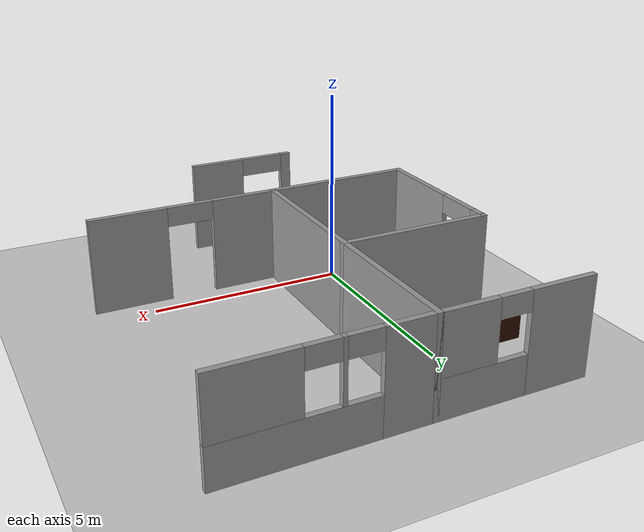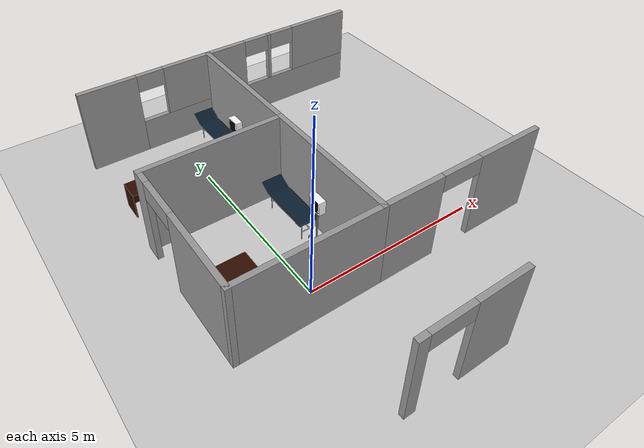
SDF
<sdf version="1.6">
 <world name="default">
  <model name="ground_plane">
   <static>1</static>
   <link name="link">
    <collision name="collision">
     <geometry><plane><normal>0 0 1</normal><size>100 100</size></plane></geometry>
     <surface><friction><ode><mu>100</mu><mu2>50</mu2></ode></friction></surface>
    </collision>
    <visual name="visual">
     <cast_shadows>0</cast_shadows>
     <geometry><plane><normal>0 0 1</normal><size>100 100</size></plane></geometry>
     <material>
      <script><uri>file://media/materials/scripts/gazebo.material</uri><name>Gazebo/Grey</name></script>
     </material>
    </visual>
   </link>
  </model>
  <model name="three_drawer_desk">
   <static>1</static>
   <link name="three_drawer_desk">
    <collision name="three_drawer_desk">
     <geometry><mesh><uri>model://three_drawer_desk/meshes/model.dae</uri></mesh></geometry>
    </collision>
    <visual name="three_drawer_desk_mesh">
     <geometry><mesh><uri>model://three_drawer_desk/meshes/model.dae</uri></mesh></geometry>
    </visual>
   </link>
   <pose>-1.618 4.9115 0 0 -0 3.14159</pose>
  </model>
  <model name="three_drawer_desk_clone">
   <static>1</static>
   <link name="three_drawer_desk">
    <collision name="three_drawer_desk">
     <geometry><mesh><uri>model://three_drawer_desk/meshes/model.dae</uri></mesh></geometry>
    </collision>
    <visual name="three_drawer_desk_mesh">
     <geometry><mesh><uri>model://three_drawer_desk/meshes/model.dae</uri></mesh></geometry>
    </visual>
   </link>
   <pose>-1.62836 1.05851 0 0 -0 3.14159</pose>
  </model>
  <model name="medical_couch">
   <static>1</static>
   <link name="medical_couch">
    <collision name="medical_couch">
     <geometry><mesh><uri>model://medical_couch/meshes/model.dae</uri></mesh></geometry>
    </collision>
    <visual name="medical_couch_mesh">
     <geometry><mesh><uri>model://medical_couch/meshes/model.dae</uri></mesh></geometry>
    </visual>
   </link>
   <pose>1.03141 6.05659 0 0 -0 3.14159</pose>
  </model>
  <model name="medical_couch_clone">
   <static>1</static>
   <link name="medical_couch">
    <collision name="medical_couch">
     <geometry><mesh><uri>model://medical_couch/meshes/model.dae</uri></mesh></geometry>
    </collision>
    <visual name="medical_couch_mesh">
     <geometry><mesh><uri>model://medical_couch/meshes/model.dae</uri></mesh></geometry>
    </visual>
   </link>
   <pose>1.03641 2.21268 0 0 -0 3.14159</pose>
  </model>
  <model name="vitals_monitor_clone_2_clone_3_clone">
   <static>1</static>
   <link name="vitals_monitor">
    <collision name="vitals_monitor">
     <geometry><mesh><uri>model://vitals_monitor/meshes/model.dae</uri></mesh></geometry>
    </collision>
    <visual name="vitals_monitor_mesh">
     <geometry><mesh><uri>model://vitals_monitor/meshes/model.dae</uri></mesh></geometry>
    </visual>
   </link>
   <pose>0.995211 4.99575 0 0 0 -1.5708</pose>
  </model>
  <model name="vitals_monitor_clone_2_clone_3_clone_0">
   <static>1</static>
   <link name="vitals_monitor">
    <collision name="vitals_monitor">
     <geometry><mesh><uri>model://vitals_monitor/meshes/model.dae</uri></mesh></geometry>
    </collision>
    <visual name="vitals_monitor_mesh">
     <geometry><mesh><uri>model://vitals_monitor/meshes/model.dae</uri></mesh></geometry>
    </visual>
   </link>
   <pose>0.989105 1.14447 0 0 0 -1.5708</pose>
  </model>
  <model name="hospital_v1">
   <link name="Wall_10">
    <pose>1.425 5.35 0 0 0 -1.5708</pose>
    <visual name="Wall_10_Visual">
     <pose>0 0 1.25 0 -0 0</pose>
     <geometry><box><size>4 0.15 2.5</size></box></geometry>
     <material>
      <script><uri>file://media/materials/scripts/gazebo.material</uri><name>Gazebo/Grey</name></script>
      <ambient>1 1 1 1</ambient>
     </material>
     <meta><layer>0</layer></meta>
    </visual>
    <collision name="Wall_10_Collision">
     <pose>0 0 1.25 0 -0 0</pose>
     <geometry><box><size>4 0.15 2.5</size></box></geometry>
     <surface>
      <friction>
       <ode><mu>1</mu><mu2>1</mu2><fdir1>0 0 0</fdir1><slip1>0</slip1><slip2>0</slip2></ode>
       <torsional>
        <coefficient>1</coefficient>
        <patch_radius>0</patch_radius>
        <surface_radius>0</surface_radius>
        <use_patch_radius>1</use_patch_radius>
        <ode><slip>0</slip></ode>
       </torsional>
      </friction>
      <bounce><restitution_coefficient>0</restitution_coefficient><threshold>1e+06</threshold></bounce>
      <contact>
       <collide_without_contact>0</collide_without_contact>
       <collide_without_contact_bitmask>1</collide_without_contact_bitmask>
       <collide_bitmask>1</collide_bitmask>
       <ode>
        <soft_cfm>0</soft_cfm>
        <soft_erp>0.2</soft_erp>
        <kp>1e+13</kp>
        <kd>1</kd>
        <max_vel>0.01</max_vel>
        <min_depth>0</min_depth>
       </ode>
       <bullet>
        <split_impulse>1</split_impulse>
        <split_impulse_penetration_threshold>-0.01</split_impulse_penetration_threshold>
        <soft_cfm>0</soft_cfm>
        <soft_erp>0.2</soft_erp>
        <kp>1e+13</kp>
        <kd>1</kd>
       </bullet>
      </contact>
     </surface>
    </collision>
   </link>
   <link name="Wall_11">
    <pose>-0.5 3.425 0 0 -0 3.14159</pose>
    <visual name="Wall_11_Visual">
     <pose>0 0 1.25 0 -0 0</pose>
     <geometry><box><size>4 0.15 2.5</size></box></geometry>
     <material>
      <script><uri>file://media/materials/scripts/gazebo.material</uri><name>Gazebo/Grey</name></script>
      <ambient>1 1 1 1</ambient>
     </material>
     <meta><layer>0</layer></meta>
    </visual>
    <collision name="Wall_11_Collision">
     <pose>0 0 1.25 0 -0 0</pose>
     <geometry><box><size>4 0.15 2.5</size></box></geometry>
     <surface>
      <friction>
       <ode><mu>1</mu><mu2>1</mu2><fdir1>0 0 0</fdir1><slip1>0</slip1><slip2>0</slip2></ode>
       <torsional>
        <coefficient>1</coefficient>
        <patch_radius>0</patch_radius>
        <surface_radius>0</surface_radius>
        <use_patch_radius>1</use_patch_radius>
        <ode><slip>0</slip></ode>
       </torsional>
      </friction>
      <bounce><restitution_coefficient>0</restitution_coefficient><threshold>1e+06</threshold></bounce>
      <contact>
       <collide_without_contact>0</collide_without_contact>
       <collide_without_contact_bitmask>1</collide_without_contact_bitmask>
       <collide_bitmask>1</collide_bitmask>
       <ode>
        <soft_cfm>0</soft_cfm>
        <soft_erp>0.2</soft_erp>
        <kp>1e+13</kp>
        <kd>1</kd>
        <max_vel>0.01</max_vel>
        <min_depth>0</min_depth>
       </ode>
       <bullet>
        <split_impulse>1</split_impulse>
        <split_impulse_penetration_threshold>-0.01</split_impulse_penetration_threshold>
        <soft_cfm>0</soft_cfm>
        <soft_erp>0.2</soft_erp>
        <kp>1e+13</kp>
        <kd>1</kd>
       </bullet>
      </contact>
     </surface>
    </collision>
   </link>
   <link name="Wall_15">
    <pose>3.85 7.275 0 0 -0 0</pose>
    <inertial>
     <mass>1</mass>
     <inertia><ixx>1</ixx><ixy>0</ixy><ixz>0</ixz><iyy>1</iyy><iyz>0</iyz><izz>1</izz></inertia>
    </inertial>
    <visual name="Wall_15_Visual_2">
     <pose>-0.35 0 1.75 0 -0 0</pose>
     <geometry><box><size>0.1 0.15 1.5</size></box></geometry>
     <material>
      <script><uri>file://media/materials/scripts/gazebo.material</uri><name>Gazebo/Grey</name></script>
      <ambient>1 1 1 1</ambient>
      <shader type="vertex"><normal_map>__default__</normal_map></shader>
      <diffuse>0.7 0.7 0.7 1</diffuse>
      <specular>0.01 0.01 0.01 1</specular>
      <emissive>0 0 0 1</emissive>
     </material>
     <meta><layer>0</layer></meta>
    </visual>
    <visual name="Wall_15_Visual_3">
     <pose>1.5 0 1.75 0 -0 0</pose>
     <geometry><box><size>2 0.15 1.5</size></box></geometry>
     <material>
      <script><uri>file://media/materials/scripts/gazebo.material</uri><name>Gazebo/Grey</name></script>
      <ambient>1 1 1 1</ambient>
      <shader type="vertex"><normal_map>__default__</normal_map></shader>
      <diffuse>0.7 0.7 0.7 1</diffuse>
      <specular>0.01 0.01 0.01 1</specular>
      <emissive>0 0 0 1</emissive>
     </material>
     <meta><layer>0</layer></meta>
    </visual>
    <visual name="Wall_15_Visual_4">
     <pose>-0.8 0 2.25 0 -0 0</pose>
     <geometry><box><size>0.8 0.15 0.5</size></box></geometry>
     <material>
      <script><uri>file://media/materials/scripts/gazebo.material</uri><name>Gazebo/Grey</name></script>
      <ambient>1 1 1 1</ambient>
      <shader type="vertex"><normal_map>__default__</normal_map></shader>
      <diffuse>0.7 0.7 0.7 1</diffuse>
      <specular>0.01 0.01 0.01 1</specular>
      <emissive>0 0 0 1</emissive>
     </material>
     <meta><layer>0</layer></meta>
    </visual>
    <visual name="Wall_15_Visual_0">
     <pose>-1.85 0 1.25 0 -0 0</pose>
     <geometry><box><size>1.3 0.15 2.5</size></box></geometry>
     <material>
      <script><uri>file://media/materials/scripts/gazebo.material</uri><name>Gazebo/Grey</name></script>
      <ambient>1 1 1 1</ambient>
      <shader type="vertex"><normal_map>__default__</normal_map></shader>
      <diffuse>0.7 0.7 0.7 1</diffuse>
      <specular>0.01 0.01 0.01 1</specular>
      <emissive>0 0 0 1</emissive>
     </material>
     <meta><layer>0</layer></meta>
    </visual>
    <visual name="Wall_15_Visual_5">
     <pose>0.1 0 2.25 0 -0 0</pose>
     <geometry><box><size>0.8 0.15 0.5</size></box></geometry>
     <material>
      <script><uri>file://media/materials/scripts/gazebo.material</uri><name>Gazebo/Grey</name></script>
      <ambient>1 1 1 1</ambient>
      <shader type="vertex"><normal_map>__default__</normal_map></shader>
      <diffuse>0.7 0.7 0.7 1</diffuse>
      <specular>0.01 0.01 0.01 1</specular>
      <emissive>0 0 0 1</emissive>
     </material>
     <meta><layer>0</layer></meta>
    </visual>
    <visual name="Wall_15_Visual_1">
     <pose>0.65 0 0.5 0 -0 0</pose>
     <geometry><box><size>3.7 0.15 1</size></box></geometry>
     <material>
      <script><uri>file://media/materials/scripts/gazebo.material</uri><name>Gazebo/Grey</name></script>
      <ambient>1 1 1 1</ambient>
      <shader type="vertex"><normal_map>__default__</normal_map></shader>
      <diffuse>0.7 0.7 0.7 1</diffuse>
      <specular>0.01 0.01 0.01 1</specular>
      <emissive>0 0 0 1</emissive>
     </material>
     <meta><layer>0</layer></meta>
    </visual>
    <collision name="Wall_15_Collision_4">
     <pose>-0.8 0 2.25 0 -0 0</pose>
     <geometry><box><size>0.8 0.15 0.5</size></box></geometry>
     <surface>
      <friction>
       <ode><mu>1</mu><mu2>1</mu2><fdir1>0 0 0</fdir1><slip1>0</slip1><slip2>0</slip2></ode>
       <torsional>
        <coefficient>1</coefficient>
        <patch_radius>0</patch_radius>
        <surface_radius>0</surface_radius>
        <use_patch_radius>1</use_patch_radius>
        <ode><slip>0</slip></ode>
       </torsional>
      </friction>
      <bounce><restitution_coefficient>0</restitution_coefficient><threshold>1e+06</threshold></bounce>
      <contact>
       <collide_without_contact>0</collide_without_contact>
       <collide_without_contact_bitmask>1</collide_without_contact_bitmask>
       <collide_bitmask>1</collide_bitmask>
       <ode>
        <soft_cfm>0</soft_cfm>
        <soft_erp>0.2</soft_erp>
        <kp>1e+13</kp>
        <kd>1</kd>
        <max_vel>0.01</max_vel>
        <min_depth>0</min_depth>
       </ode>
       <bullet>
        <split_impulse>1</split_impulse>
        <split_impulse_penetration_threshold>-0.01</split_impulse_penetration_threshold>
        <soft_cfm>0</soft_cfm>
        <soft_erp>0.2</soft_erp>
        <kp>1e+13</kp>
        <kd>1</kd>
       </bullet>
      </contact>
     </surface>
    </collision>
    <collision name="Wall_15_Collision_2">
     <pose>-0.35 0 1.75 0 -0 0</pose>
     <geometry><box><size>0.1 0.15 1.5</size></box></geometry>
     <surface>
      <friction>
       <ode><mu>1</mu><mu2>1</mu2><fdir1>0 0 0</fdir1><slip1>0</slip1><slip2>0</slip2></ode>
       <torsional>
        <coefficient>1</coefficient>
        <patch_radius>0</patch_radius>
        <surface_radius>0</surface_radius>
        <use_patch_radius>1</use_patch_radius>
        <ode><slip>0</slip></ode>
       </torsional>
      </friction>
      <bounce><restitution_coefficient>0</restitution_coefficient><threshold>1e+06</threshold></bounce>
      <contact>
       <collide_without_contact>0</collide_without_contact>
       <collide_without_contact_bitmask>1</collide_without_contact_bitmask>
       <collide_bitmask>1</collide_bitmask>
       <ode>
        <soft_cfm>0</soft_cfm>
        <soft_erp>0.2</soft_erp>
        <kp>1e+13</kp>
        <kd>1</kd>
        <max_vel>0.01</max_vel>
        <min_depth>0</min_depth>
       </ode>
       <bullet>
        <split_impulse>1</split_impulse>
        <split_impulse_penetration_threshold>-0.01</split_impulse_penetration_threshold>
        <soft_cfm>0</soft_cfm>
        <soft_erp>0.2</soft_erp>
        <kp>1e+13</kp>
        <kd>1</kd>
       </bullet>
      </contact>
     </surface>
    </collision>
    <collision name="Wall_15_Collision_5">
     <pose>0.1 0 2.25 0 -0 0</pose>
     <geometry><box><size>0.8 0.15 0.5</size></box></geometry>
     <surface>
      <friction>
       <ode><mu>1</mu><mu2>1</mu2><fdir1>0 0 0</fdir1><slip1>0</slip1><slip2>0</slip2></ode>
       <torsional>
        <coefficient>1</coefficient>
        <patch_radius>0</patch_radius>
        <surface_radius>0</surface_radius>
        <use_patch_radius>1</use_patch_radius>
        <ode><slip>0</slip></ode>
       </torsional>
      </friction>
      <bounce><restitution_coefficient>0</restitution_coefficient><threshold>1e+06</threshold></bounce>
      <contact>
       <collide_without_contact>0</collide_without_contact>
       <collide_without_contact_bitmask>1</collide_without_contact_bitmask>
       <collide_bitmask>1</collide_bitmask>
       <ode>
        <soft_cfm>0</soft_cfm>
        <soft_erp>0.2</soft_erp>
        <kp>1e+13</kp>
        <kd>1</kd>
        <max_vel>0.01</max_vel>
        <min_depth>0</min_depth>
       </ode>
       <bullet>
        <split_impulse>1</split_impulse>
        <split_impulse_penetration_threshold>-0.01</split_impulse_penetration_threshold>
        <soft_cfm>0</soft_cfm>
        <soft_erp>0.2</soft_erp>
        <kp>1e+13</kp>
        <kd>1</kd>
       </bullet>
      </contact>
     </surface>
    </collision>
    <collision name="Wall_15_Collision_0">
     <pose>-1.85 0 1.25 0 -0 0</pose>
     <geometry><box><size>1.3 0.15 2.5</size></box></geometry>
     <surface>
      <friction>
       <ode><mu>1</mu><mu2>1</mu2><fdir1>0 0 0</fdir1><slip1>0</slip1><slip2>0</slip2></ode>
       <torsional>
        <coefficient>1</coefficient>
        <patch_radius>0</patch_radius>
        <surface_radius>0</surface_radius>
        <use_patch_radius>1</use_patch_radius>
        <ode><slip>0</slip></ode>
       </torsional>
      </friction>
      <bounce><restitution_coefficient>0</restitution_coefficient><threshold>1e+06</threshold></bounce>
      <contact>
       <collide_without_contact>0</collide_without_contact>
       <collide_without_contact_bitmask>1</collide_without_contact_bitmask>
       <collide_bitmask>1</collide_bitmask>
       <ode>
        <soft_cfm>0</soft_cfm>
        <soft_erp>0.2</soft_erp>
        <kp>1e+13</kp>
        <kd>1</kd>
        <max_vel>0.01</max_vel>
        <min_depth>0</min_depth>
       </ode>
       <bullet>
        <split_impulse>1</split_impulse>
        <split_impulse_penetration_threshold>-0.01</split_impulse_penetration_threshold>
        <soft_cfm>0</soft_cfm>
        <soft_erp>0.2</soft_erp>
        <kp>1e+13</kp>
        <kd>1</kd>
       </bullet>
      </contact>
     </surface>
    </collision>
    <collision name="Wall_15_Collision_3">
     <pose>1.5 0 1.75 0 -0 0</pose>
     <geometry><box><size>2 0.15 1.5</size></box></geometry>
     <surface>
      <friction>
       <ode><mu>1</mu><mu2>1</mu2><fdir1>0 0 0</fdir1><slip1>0</slip1><slip2>0</slip2></ode>
       <torsional>
        <coefficient>1</coefficient>
        <patch_radius>0</patch_radius>
        <surface_radius>0</surface_radius>
        <use_patch_radius>1</use_patch_radius>
        <ode><slip>0</slip></ode>
       </torsional>
      </friction>
      <bounce><restitution_coefficient>0</restitution_coefficient><threshold>1e+06</threshold></bounce>
      <contact>
       <collide_without_contact>0</collide_without_contact>
       <collide_without_contact_bitmask>1</collide_without_contact_bitmask>
       <collide_bitmask>1</collide_bitmask>
       <ode>
        <soft_cfm>0</soft_cfm>
        <soft_erp>0.2</soft_erp>
        <kp>1e+13</kp>
        <kd>1</kd>
        <max_vel>0.01</max_vel>
        <min_depth>0</min_depth>
       </ode>
       <bullet>
        <split_impulse>1</split_impulse>
        <split_impulse_penetration_threshold>-0.01</split_impulse_penetration_threshold>
        <soft_cfm>0</soft_cfm>
        <soft_erp>0.2</soft_erp>
        <kp>1e+13</kp>
        <kd>1</kd>
       </bullet>
      </contact>
     </surface>
    </collision>
    <collision name="Wall_15_Collision_1">
     <pose>0.65 0 0.5 0 -0 0</pose>
     <geometry><box><size>3.7 0.15 1</size></box></geometry>
     <surface>
      <friction>
       <ode><mu>1</mu><mu2>1</mu2><fdir1>0 0 0</fdir1><slip1>0</slip1><slip2>0</slip2></ode>
       <torsional>
        <coefficient>1</coefficient>
        <patch_radius>0</patch_radius>
        <surface_radius>0</surface_radius>
        <use_patch_radius>1</use_patch_radius>
        <ode><slip>0</slip></ode>
       </torsional>
      </friction>
      <bounce><restitution_coefficient>0</restitution_coefficient><threshold>1e+06</threshold></bounce>
      <contact>
       <collide_without_contact>0</collide_without_contact>
       <collide_without_contact_bitmask>1</collide_without_contact_bitmask>
       <collide_bitmask>1</collide_bitmask>
       <ode>
        <soft_cfm>0</soft_cfm>
        <soft_erp>0.2</soft_erp>
        <kp>1e+13</kp>
        <kd>1</kd>
        <max_vel>0.01</max_vel>
        <min_depth>0</min_depth>
       </ode>
       <bullet>
        <split_impulse>1</split_impulse>
        <split_impulse_penetration_threshold>-0.01</split_impulse_penetration_threshold>
        <soft_cfm>0</soft_cfm>
        <soft_erp>0.2</soft_erp>
        <kp>1e+13</kp>
        <kd>1</kd>
       </bullet>
      </contact>
     </surface>
    </collision>
   </link>
   <link name="Wall_17">
    <pose>3.85 -0.575 0 0 -0 3.14159</pose>
    <visual name="Wall_17_Visual_2">
     <pose>0.1 0 2.25 0 -0 0</pose>
     <geometry><box><size>1.2 0.15 0.5</size></box></geometry>
     <material>
      <script><uri>file://media/materials/scripts/gazebo.material</uri><name>Gazebo/Grey</name></script>
      <ambient>1 1 1 1</ambient>
     </material>
     <meta><layer>0</layer></meta>
    </visual>
    <visual name="Wall_17_Visual_1">
     <pose>1.6 0 1.25 0 -0 0</pose>
     <geometry><box><size>1.8 0.15 2.5</size></box></geometry>
     <material>
      <script><uri>file://media/materials/scripts/gazebo.material</uri><name>Gazebo/Grey</name></script>
      <ambient>1 1 1 1</ambient>
     </material>
     <meta><layer>0</layer></meta>
    </visual>
    <visual name="Wall_17_Visual_0">
     <pose>-1.5 0 1.25 0 -0 0</pose>
     <geometry><box><size>2 0.15 2.5</size></box></geometry>
     <material>
      <script><uri>file://media/materials/scripts/gazebo.material</uri><name>Gazebo/Grey</name></script>
      <ambient>1 1 1 1</ambient>
     </material>
     <meta><layer>0</layer></meta>
    </visual>
    <collision name="Wall_17_Collision_1">
     <pose>1.6 0 1.25 0 -0 0</pose>
     <geometry><box><size>1.8 0.15 2.5</size></box></geometry>
     <surface>
      <friction>
       <ode><mu>1</mu><mu2>1</mu2><fdir1>0 0 0</fdir1><slip1>0</slip1><slip2>0</slip2></ode>
       <torsional>
        <coefficient>1</coefficient>
        <patch_radius>0</patch_radius>
        <surface_radius>0</surface_radius>
        <use_patch_radius>1</use_patch_radius>
        <ode><slip>0</slip></ode>
       </torsional>
      </friction>
      <bounce><restitution_coefficient>0</restitution_coefficient><threshold>1e+06</threshold></bounce>
      <contact>
       <collide_without_contact>0</collide_without_contact>
       <collide_without_contact_bitmask>1</collide_without_contact_bitmask>
       <collide_bitmask>1</collide_bitmask>
       <ode>
        <soft_cfm>0</soft_cfm>
        <soft_erp>0.2</soft_erp>
        <kp>1e+13</kp>
        <kd>1</kd>
        <max_vel>0.01</max_vel>
        <min_depth>0</min_depth>
       </ode>
       <bullet>
        <split_impulse>1</split_impulse>
        <split_impulse_penetration_threshold>-0.01</split_impulse_penetration_threshold>
        <soft_cfm>0</soft_cfm>
        <soft_erp>0.2</soft_erp>
        <kp>1e+13</kp>
        <kd>1</kd>
       </bullet>
      </contact>
     </surface>
    </collision>
    <collision name="Wall_17_Collision_2">
     <pose>0.1 0 2.25 0 -0 0</pose>
     <geometry><box><size>1.2 0.15 0.5</size></box></geometry>
     <surface>
      <friction>
       <ode><mu>1</mu><mu2>1</mu2><fdir1>0 0 0</fdir1><slip1>0</slip1><slip2>0</slip2></ode>
       <torsional>
        <coefficient>1</coefficient>
        <patch_radius>0</patch_radius>
        <surface_radius>0</surface_radius>
        <use_patch_radius>1</use_patch_radius>
        <ode><slip>0</slip></ode>
       </torsional>
      </friction>
      <bounce><restitution_coefficient>0</restitution_coefficient><threshold>1e+06</threshold></bounce>
      <contact>
       <collide_without_contact>0</collide_without_contact>
       <collide_without_contact_bitmask>1</collide_without_contact_bitmask>
       <collide_bitmask>1</collide_bitmask>
       <ode>
        <soft_cfm>0</soft_cfm>
        <soft_erp>0.2</soft_erp>
        <kp>1e+13</kp>
        <kd>1</kd>
        <max_vel>0.01</max_vel>
        <min_depth>0</min_depth>
       </ode>
       <bullet>
        <split_impulse>1</split_impulse>
        <split_impulse_penetration_threshold>-0.01</split_impulse_penetration_threshold>
        <soft_cfm>0</soft_cfm>
        <soft_erp>0.2</soft_erp>
        <kp>1e+13</kp>
        <kd>1</kd>
       </bullet>
      </contact>
     </surface>
    </collision>
    <collision name="Wall_17_Collision_0">
     <pose>-1.5 0 1.25 0 -0 0</pose>
     <geometry><box><size>2 0.15 2.5</size></box></geometry>
     <surface>
      <friction>
       <ode><mu>1</mu><mu2>1</mu2><fdir1>0 0 0</fdir1><slip1>0</slip1><slip2>0</slip2></ode>
       <torsional>
        <coefficient>1</coefficient>
        <patch_radius>0</patch_radius>
        <surface_radius>0</surface_radius>
        <use_patch_radius>1</use_patch_radius>
        <ode><slip>0</slip></ode>
       </torsional>
      </friction>
      <bounce><restitution_coefficient>0</restitution_coefficient><threshold>1e+06</threshold></bounce>
      <contact>
       <collide_without_contact>0</collide_without_contact>
       <collide_without_contact_bitmask>1</collide_without_contact_bitmask>
       <collide_bitmask>1</collide_bitmask>
       <ode>
        <soft_cfm>0</soft_cfm>
        <soft_erp>0.2</soft_erp>
        <kp>1e+13</kp>
        <kd>1</kd>
        <max_vel>0.01</max_vel>
        <min_depth>0</min_depth>
       </ode>
       <bullet>
        <split_impulse>1</split_impulse>
        <split_impulse_penetration_threshold>-0.01</split_impulse_penetration_threshold>
        <soft_cfm>0</soft_cfm>
        <soft_erp>0.2</soft_erp>
        <kp>1e+13</kp>
        <kd>1</kd>
       </bullet>
      </contact>
     </surface>
    </collision>
   </link>
   <link name="Wall_18">
    <pose>1.425 1.425 0 0 -0 1.5708</pose>
    <visual name="Wall_18_Visual">
     <pose>0 0 1.25 0 -0 0</pose>
     <geometry><box><size>4.15 0.15 2.5</size></box></geometry>
     <material>
      <script><uri>file://media/materials/scripts/gazebo.material</uri><name>Gazebo/Grey</name></script>
      <ambient>1 1 1 1</ambient>
     </material>
     <meta><layer>0</layer></meta>
    </visual>
    <collision name="Wall_18_Collision">
     <pose>0 0 1.25 0 -0 0</pose>
     <geometry><box><size>4.15 0.15 2.5</size></box></geometry>
     <surface>
      <friction>
       <ode><mu>1</mu><mu2>1</mu2><fdir1>0 0 0</fdir1><slip1>0</slip1><slip2>0</slip2></ode>
       <torsional>
        <coefficient>1</coefficient>
        <patch_radius>0</patch_radius>
        <surface_radius>0</surface_radius>
        <use_patch_radius>1</use_patch_radius>
        <ode><slip>0</slip></ode>
       </torsional>
      </friction>
      <bounce><restitution_coefficient>0</restitution_coefficient><threshold>1e+06</threshold></bounce>
      <contact>
       <collide_without_contact>0</collide_without_contact>
       <collide_without_contact_bitmask>1</collide_without_contact_bitmask>
       <collide_bitmask>1</collide_bitmask>
       <ode>
        <soft_cfm>0</soft_cfm>
        <soft_erp>0.2</soft_erp>
        <kp>1e+13</kp>
        <kd>1</kd>
        <max_vel>0.01</max_vel>
        <min_depth>0</min_depth>
       </ode>
       <bullet>
        <split_impulse>1</split_impulse>
        <split_impulse_penetration_threshold>-0.01</split_impulse_penetration_threshold>
        <soft_cfm>0</soft_cfm>
        <soft_erp>0.2</soft_erp>
        <kp>1e+13</kp>
        <kd>1</kd>
       </bullet>
      </contact>
     </surface>
    </collision>
   </link>
   <link name="Wall_20">
    <pose>-0.5 -0.575 0 0 -0 3.14159</pose>
    <visual name="Wall_20_Visual">
     <pose>0 0 1.25 0 -0 0</pose>
     <geometry><box><size>4 0.15 2.5</size></box></geometry>
     <material>
      <script><uri>file://media/materials/scripts/gazebo.material</uri><name>Gazebo/Grey</name></script>
      <ambient>1 1 1 1</ambient>
     </material>
     <meta><layer>0</layer></meta>
    </visual>
    <collision name="Wall_20_Collision">
     <pose>0 0 1.25 0 -0 0</pose>
     <geometry><box><size>4 0.15 2.5</size></box></geometry>
     <surface>
      <friction>
       <ode><mu>1</mu><mu2>1</mu2><fdir1>0 0 0</fdir1><slip1>0</slip1><slip2>0</slip2></ode>
       <torsional>
        <coefficient>1</coefficient>
        <patch_radius>0</patch_radius>
        <surface_radius>0</surface_radius>
        <use_patch_radius>1</use_patch_radius>
        <ode><slip>0</slip></ode>
       </torsional>
      </friction>
      <bounce><restitution_coefficient>0</restitution_coefficient><threshold>1e+06</threshold></bounce>
      <contact>
       <collide_without_contact>0</collide_without_contact>
       <collide_without_contact_bitmask>1</collide_without_contact_bitmask>
       <collide_bitmask>1</collide_bitmask>
       <ode>
        <soft_cfm>0</soft_cfm>
        <soft_erp>0.2</soft_erp>
        <kp>1e+13</kp>
        <kd>1</kd>
        <max_vel>0.01</max_vel>
        <min_depth>0</min_depth>
       </ode>
       <bullet>
        <split_impulse>1</split_impulse>
        <split_impulse_penetration_threshold>-0.01</split_impulse_penetration_threshold>
        <soft_cfm>0</soft_cfm>
        <soft_erp>0.2</soft_erp>
        <kp>1e+13</kp>
        <kd>1</kd>
       </bullet>
      </contact>
     </surface>
    </collision>
   </link>
   <link name="Wall_21">
    <pose>-2.425 1.425 0 0 -0 1.5708</pose>
    <visual name="Wall_21_Visual_0">
     <pose>-0.85 0 1.25 0 -0 0</pose>
     <geometry><box><size>2.45 0.15 2.5</size></box></geometry>
     <material>
      <script><uri>file://media/materials/scripts/gazebo.material</uri><name>Gazebo/Grey</name></script>
      <ambient>1 1 1 1</ambient>
     </material>
     <meta><layer>0</layer></meta>
    </visual>
    <visual name="Wall_21_Visual_1">
     <pose>1.825 0 1.25 0 -0 0</pose>
     <geometry><box><size>0.5 0.15 2.5</size></box></geometry>
     <material>
      <script><uri>file://media/materials/scripts/gazebo.material</uri><name>Gazebo/Grey</name></script>
      <ambient>1 1 1 1</ambient>
     </material>
     <meta><layer>0</layer></meta>
    </visual>
    <visual name="Wall_21_Visual_2">
     <pose>0.975 0 2.25 0 -0 0</pose>
     <geometry><box><size>1.2 0.15 0.5</size></box></geometry>
     <material>
      <script><uri>file://media/materials/scripts/gazebo.material</uri><name>Gazebo/Grey</name></script>
      <ambient>1 1 1 1</ambient>
     </material>
     <meta><layer>0</layer></meta>
    </visual>
    <collision name="Wall_21_Collision_1">
     <pose>1.825 0 1.25 0 -0 0</pose>
     <geometry><box><size>0.5 0.15 2.5</size></box></geometry>
     <surface>
      <friction>
       <ode><mu>1</mu><mu2>1</mu2><fdir1>0 0 0</fdir1><slip1>0</slip1><slip2>0</slip2></ode>
       <torsional>
        <coefficient>1</coefficient>
        <patch_radius>0</patch_radius>
        <surface_radius>0</surface_radius>
        <use_patch_radius>1</use_patch_radius>
        <ode><slip>0</slip></ode>
       </torsional>
      </friction>
      <bounce><restitution_coefficient>0</restitution_coefficient><threshold>1e+06</threshold></bounce>
      <contact>
       <collide_without_contact>0</collide_without_contact>
       <collide_without_contact_bitmask>1</collide_without_contact_bitmask>
       <collide_bitmask>1</collide_bitmask>
       <ode>
        <soft_cfm>0</soft_cfm>
        <soft_erp>0.2</soft_erp>
        <kp>1e+13</kp>
        <kd>1</kd>
        <max_vel>0.01</max_vel>
        <min_depth>0</min_depth>
       </ode>
       <bullet>
        <split_impulse>1</split_impulse>
        <split_impulse_penetration_threshold>-0.01</split_impulse_penetration_threshold>
        <soft_cfm>0</soft_cfm>
        <soft_erp>0.2</soft_erp>
        <kp>1e+13</kp>
        <kd>1</kd>
       </bullet>
      </contact>
     </surface>
    </collision>
    <collision name="Wall_21_Collision_0">
     <pose>-0.85 0 1.25 0 -0 0</pose>
     <geometry><box><size>2.45 0.15 2.5</size></box></geometry>
     <surface>
      <friction>
       <ode><mu>1</mu><mu2>1</mu2><fdir1>0 0 0</fdir1><slip1>0</slip1><slip2>0</slip2></ode>
       <torsional>
        <coefficient>1</coefficient>
        <patch_radius>0</patch_radius>
        <surface_radius>0</surface_radius>
        <use_patch_radius>1</use_patch_radius>
        <ode><slip>0</slip></ode>
       </torsional>
      </friction>
      <bounce><restitution_coefficient>0</restitution_coefficient><threshold>1e+06</threshold></bounce>
      <contact>
       <collide_without_contact>0</collide_without_contact>
       <collide_without_contact_bitmask>1</collide_without_contact_bitmask>
       <collide_bitmask>1</collide_bitmask>
       <ode>
        <soft_cfm>0</soft_cfm>
        <soft_erp>0.2</soft_erp>
        <kp>1e+13</kp>
        <kd>1</kd>
        <max_vel>0.01</max_vel>
        <min_depth>0</min_depth>
       </ode>
       <bullet>
        <split_impulse>1</split_impulse>
        <split_impulse_penetration_threshold>-0.01</split_impulse_penetration_threshold>
        <soft_cfm>0</soft_cfm>
        <soft_erp>0.2</soft_erp>
        <kp>1e+13</kp>
        <kd>1</kd>
       </bullet>
      </contact>
     </surface>
    </collision>
    <collision name="Wall_21_Collision_2">
     <pose>0.975 0 2.25 0 -0 0</pose>
     <geometry><box><size>1.2 0.15 0.5</size></box></geometry>
     <surface>
      <friction>
       <ode><mu>1</mu><mu2>1</mu2><fdir1>0 0 0</fdir1><slip1>0</slip1><slip2>0</slip2></ode>
       <torsional>
        <coefficient>1</coefficient>
        <patch_radius>0</patch_radius>
        <surface_radius>0</surface_radius>
        <use_patch_radius>1</use_patch_radius>
        <ode><slip>0</slip></ode>
       </torsional>
      </friction>
      <bounce><restitution_coefficient>0</restitution_coefficient><threshold>1e+06</threshold></bounce>
      <contact>
       <collide_without_contact>0</collide_without_contact>
       <collide_without_contact_bitmask>1</collide_without_contact_bitmask>
       <collide_bitmask>1</collide_bitmask>
       <ode>
        <soft_cfm>0</soft_cfm>
        <soft_erp>0.2</soft_erp>
        <kp>1e+13</kp>
        <kd>1</kd>
        <max_vel>0.01</max_vel>
        <min_depth>0</min_depth>
       </ode>
       <bullet>
        <split_impulse>1</split_impulse>
        <split_impulse_penetration_threshold>-0.01</split_impulse_penetration_threshold>
        <soft_cfm>0</soft_cfm>
        <soft_erp>0.2</soft_erp>
        <kp>1e+13</kp>
        <kd>1</kd>
       </bullet>
      </contact>
     </surface>
    </collision>
   </link>
   <link name="Wall_44">
    <pose>1.15 -3.425 0 0 -0 0</pose>
    <visual name="Wall_44_Visual_0">
     <pose>-1.35 0 1.25 0 -0 0</pose>
     <geometry><box><size>0.3 0.15 2.5</size></box></geometry>
     <material>
      <script><uri>file://media/materials/scripts/gazebo.material</uri><name>Gazebo/Grey</name></script>
      <ambient>1 1 1 1</ambient>
     </material>
     <meta><layer>0</layer></meta>
    </visual>
    <visual name="Wall_44_Visual_1">
     <pose>0.75 0 1.25 0 -0 0</pose>
     <geometry><box><size>1.5 0.15 2.5</size></box></geometry>
     <material>
      <script><uri>file://media/materials/scripts/gazebo.material</uri><name>Gazebo/Grey</name></script>
      <ambient>1 1 1 1</ambient>
     </material>
     <meta><layer>0</layer></meta>
    </visual>
    <visual name="Wall_44_Visual_2">
     <pose>-0.6 0 2.25 0 -0 0</pose>
     <geometry><box><size>1.2 0.15 0.5</size></box></geometry>
     <material>
      <script><uri>file://media/materials/scripts/gazebo.material</uri><name>Gazebo/Grey</name></script>
      <ambient>1 1 1 1</ambient>
     </material>
     <meta><layer>0</layer></meta>
    </visual>
    <collision name="Wall_44_Collision_0">
     <pose>-1.35 0 1.25 0 -0 0</pose>
     <geometry><box><size>0.3 0.15 2.5</size></box></geometry>
     <surface>
      <friction>
       <ode><mu>1</mu><mu2>1</mu2><fdir1>0 0 0</fdir1><slip1>0</slip1><slip2>0</slip2></ode>
       <torsional>
        <coefficient>1</coefficient>
        <patch_radius>0</patch_radius>
        <surface_radius>0</surface_radius>
        <use_patch_radius>1</use_patch_radius>
        <ode><slip>0</slip></ode>
       </torsional>
      </friction>
      <bounce><restitution_coefficient>0</restitution_coefficient><threshold>1e+06</threshold></bounce>
      <contact>
       <collide_without_contact>0</collide_without_contact>
       <collide_without_contact_bitmask>1</collide_without_contact_bitmask>
       <collide_bitmask>1</collide_bitmask>
       <ode>
        <soft_cfm>0</soft_cfm>
        <soft_erp>0.2</soft_erp>
        <kp>1e+13</kp>
        <kd>1</kd>
        <max_vel>0.01</max_vel>
        <min_depth>0</min_depth>
       </ode>
       <bullet>
        <split_impulse>1</split_impulse>
        <split_impulse_penetration_threshold>-0.01</split_impulse_penetration_threshold>
        <soft_cfm>0</soft_cfm>
        <soft_erp>0.2</soft_erp>
        <kp>1e+13</kp>
        <kd>1</kd>
       </bullet>
      </contact>
     </surface>
    </collision>
    <collision name="Wall_44_Collision_1">
     <pose>0.75 0 1.25 0 -0 0</pose>
     <geometry><box><size>1.5 0.15 2.5</size></box></geometry>
     <surface>
      <friction>
       <ode><mu>1</mu><mu2>1</mu2><fdir1>0 0 0</fdir1><slip1>0</slip1><slip2>0</slip2></ode>
       <torsional>
        <coefficient>1</coefficient>
        <patch_radius>0</patch_radius>
        <surface_radius>0</surface_radius>
        <use_patch_radius>1</use_patch_radius>
        <ode><slip>0</slip></ode>
       </torsional>
      </friction>
      <bounce><restitution_coefficient>0</restitution_coefficient><threshold>1e+06</threshold></bounce>
      <contact>
       <collide_without_contact>0</collide_without_contact>
       <collide_without_contact_bitmask>1</collide_without_contact_bitmask>
       <collide_bitmask>1</collide_bitmask>
       <ode>
        <soft_cfm>0</soft_cfm>
        <soft_erp>0.2</soft_erp>
        <kp>1e+13</kp>
        <kd>1</kd>
        <max_vel>0.01</max_vel>
        <min_depth>0</min_depth>
       </ode>
       <bullet>
        <split_impulse>1</split_impulse>
        <split_impulse_penetration_threshold>-0.01</split_impulse_penetration_threshold>
        <soft_cfm>0</soft_cfm>
        <soft_erp>0.2</soft_erp>
        <kp>1e+13</kp>
        <kd>1</kd>
       </bullet>
      </contact>
     </surface>
    </collision>
    <collision name="Wall_44_Collision_2">
     <pose>-0.6 0 2.25 0 -0 0</pose>
     <geometry><box><size>1.2 0.15 0.5</size></box></geometry>
     <surface>
      <friction>
       <ode><mu>1</mu><mu2>1</mu2><fdir1>0 0 0</fdir1><slip1>0</slip1><slip2>0</slip2></ode>
       <torsional>
        <coefficient>1</coefficient>
        <patch_radius>0</patch_radius>
        <surface_radius>0</surface_radius>
        <use_patch_radius>1</use_patch_radius>
        <ode><slip>0</slip></ode>
       </torsional>
      </friction>
      <bounce><restitution_coefficient>0</restitution_coefficient><threshold>1e+06</threshold></bounce>
      <contact>
       <collide_without_contact>0</collide_without_contact>
       <collide_without_contact_bitmask>1</collide_without_contact_bitmask>
       <collide_bitmask>1</collide_bitmask>
       <ode>
        <soft_cfm>0</soft_cfm>
        <soft_erp>0.2</soft_erp>
        <kp>1e+13</kp>
        <kd>1</kd>
        <max_vel>0.01</max_vel>
        <min_depth>0</min_depth>
       </ode>
       <bullet>
        <split_impulse>1</split_impulse>
        <split_impulse_penetration_threshold>-0.01</split_impulse_penetration_threshold>
        <soft_cfm>0</soft_cfm>
        <soft_erp>0.2</soft_erp>
        <kp>1e+13</kp>
        <kd>1</kd>
       </bullet>
      </contact>
     </surface>
    </collision>
   </link>
   <link name="Wall_9">
    <pose>-0.5 7.275 0 0 -0 0</pose>
    <inertial>
     <mass>1</mass>
     <inertia><ixx>1</ixx><ixy>0</ixy><ixz>0</ixz><iyy>1</iyy><iyz>0</iyz><izz>1</izz></inertia>
    </inertial>
    <visual name="Wall_9_Visual_1">
     <pose>0.8375 0 0.5 0 -0 0</pose>
     <geometry><box><size>2.325 0.15 1</size></box></geometry>
     <material>
      <script><uri>file://media/materials/scripts/gazebo.material</uri><name>Gazebo/Grey</name></script>
      <ambient>1 1 1 1</ambient>
      <shader type="vertex"><normal_map>__default__</normal_map></shader>
      <diffuse>0.7 0.7 0.7 1</diffuse>
      <specular>0.01 0.01 0.01 1</specular>
      <emissive>0 0 0 1</emissive>
     </material>
     <meta><layer>0</layer></meta>
    </visual>
    <visual name="Wall_9_Visual_3">
     <pose>0.075 0 2.25 0 -0 0</pose>
     <geometry><box><size>0.8 0.15 0.5</size></box></geometry>
     <material>
      <script><uri>file://media/materials/scripts/gazebo.material</uri><name>Gazebo/Grey</name></script>
      <ambient>1 1 1 1</ambient>
      <shader type="vertex"><normal_map>__default__</normal_map></shader>
      <diffuse>0.7 0.7 0.7 1</diffuse>
      <specular>0.01 0.01 0.01 1</specular>
      <emissive>0 0 0 1</emissive>
     </material>
     <meta><layer>0</layer></meta>
    </visual>
    <visual name="Wall_9_Visual_2">
     <pose>1.2375 0 1.75 0 -0 0</pose>
     <geometry><box><size>1.525 0.15 1.5</size></box></geometry>
     <material>
      <script><uri>file://media/materials/scripts/gazebo.material</uri><name>Gazebo/Grey</name></script>
      <ambient>1 1 1 1</ambient>
      <shader type="vertex"><normal_map>__default__</normal_map></shader>
      <diffuse>0.7 0.7 0.7 1</diffuse>
      <specular>0.01 0.01 0.01 1</specular>
      <emissive>0 0 0 1</emissive>
     </material>
     <meta><layer>0</layer></meta>
    </visual>
    <visual name="Wall_9_Visual_0">
     <pose>-1.1625 0 1.25 0 -0 0</pose>
     <geometry><box><size>1.675 0.15 2.5</size></box></geometry>
     <material>
      <script><uri>file://media/materials/scripts/gazebo.material</uri><name>Gazebo/Grey</name></script>
      <ambient>1 1 1 1</ambient>
      <shader type="vertex"><normal_map>__default__</normal_map></shader>
      <diffuse>0.7 0.7 0.7 1</diffuse>
      <specular>0.01 0.01 0.01 1</specular>
      <emissive>0 0 0 1</emissive>
     </material>
     <meta><layer>0</layer></meta>
    </visual>
    <collision name="Wall_9_Collision_0">
     <pose>-1.1625 0 1.25 0 -0 0</pose>
     <geometry><box><size>1.675 0.15 2.5</size></box></geometry>
     <surface>
      <friction>
       <ode><mu>1</mu><mu2>1</mu2><fdir1>0 0 0</fdir1><slip1>0</slip1><slip2>0</slip2></ode>
       <torsional>
        <coefficient>1</coefficient>
        <patch_radius>0</patch_radius>
        <surface_radius>0</surface_radius>
        <use_patch_radius>1</use_patch_radius>
        <ode><slip>0</slip></ode>
       </torsional>
      </friction>
      <bounce><restitution_coefficient>0</restitution_coefficient><threshold>1e+06</threshold></bounce>
      <contact>
       <collide_without_contact>0</collide_without_contact>
       <collide_without_contact_bitmask>1</collide_without_contact_bitmask>
       <collide_bitmask>1</collide_bitmask>
       <ode>
        <soft_cfm>0</soft_cfm>
        <soft_erp>0.2</soft_erp>
        <kp>1e+13</kp>
        <kd>1</kd>
        <max_vel>0.01</max_vel>
        <min_depth>0</min_depth>
       </ode>
       <bullet>
        <split_impulse>1</split_impulse>
        <split_impulse_penetration_threshold>-0.01</split_impulse_penetration_threshold>
        <soft_cfm>0</soft_cfm>
        <soft_erp>0.2</soft_erp>
        <kp>1e+13</kp>
        <kd>1</kd>
       </bullet>
      </contact>
     </surface>
    </collision>
    <collision name="Wall_9_Collision_2">
     <pose>1.2375 0 1.75 0 -0 0</pose>
     <geometry><box><size>1.525 0.15 1.5</size></box></geometry>
     <surface>
      <friction>
       <ode><mu>1</mu><mu2>1</mu2><fdir1>0 0 0</fdir1><slip1>0</slip1><slip2>0</slip2></ode>
       <torsional>
        <coefficient>1</coefficient>
        <patch_radius>0</patch_radius>
        <surface_radius>0</surface_radius>
        <use_patch_radius>1</use_patch_radius>
        <ode><slip>0</slip></ode>
       </torsional>
      </friction>
      <bounce><restitution_coefficient>0</restitution_coefficient><threshold>1e+06</threshold></bounce>
      <contact>
       <collide_without_contact>0</collide_without_contact>
       <collide_without_contact_bitmask>1</collide_without_contact_bitmask>
       <collide_bitmask>1</collide_bitmask>
       <ode>
        <soft_cfm>0</soft_cfm>
        <soft_erp>0.2</soft_erp>
        <kp>1e+13</kp>
        <kd>1</kd>
        <max_vel>0.01</max_vel>
        <min_depth>0</min_depth>
       </ode>
       <bullet>
        <split_impulse>1</split_impulse>
        <split_impulse_penetration_threshold>-0.01</split_impulse_penetration_threshold>
        <soft_cfm>0</soft_cfm>
        <soft_erp>0.2</soft_erp>
        <kp>1e+13</kp>
        <kd>1</kd>
       </bullet>
      </contact>
     </surface>
    </collision>
    <collision name="Wall_9_Collision_3">
     <pose>0.075 0 2.25 0 -0 0</pose>
     <geometry><box><size>0.8 0.15 0.5</size></box></geometry>
     <surface>
      <friction>
       <ode><mu>1</mu><mu2>1</mu2><fdir1>0 0 0</fdir1><slip1>0</slip1><slip2>0</slip2></ode>
       <torsional>
        <coefficient>1</coefficient>
        <patch_radius>0</patch_radius>
        <surface_radius>0</surface_radius>
        <use_patch_radius>1</use_patch_radius>
        <ode><slip>0</slip></ode>
       </torsional>
      </friction>
      <bounce><restitution_coefficient>0</restitution_coefficient><threshold>1e+06</threshold></bounce>
      <contact>
       <collide_without_contact>0</collide_without_contact>
       <collide_without_contact_bitmask>1</collide_without_contact_bitmask>
       <collide_bitmask>1</collide_bitmask>
       <ode>
        <soft_cfm>0</soft_cfm>
        <soft_erp>0.2</soft_erp>
        <kp>1e+13</kp>
        <kd>1</kd>
        <max_vel>0.01</max_vel>
        <min_depth>0</min_depth>
       </ode>
       <bullet>
        <split_impulse>1</split_impulse>
        <split_impulse_penetration_threshold>-0.01</split_impulse_penetration_threshold>
        <soft_cfm>0</soft_cfm>
        <soft_erp>0.2</soft_erp>
        <kp>1e+13</kp>
        <kd>1</kd>
       </bullet>
      </contact>
     </surface>
    </collision>
    <collision name="Wall_9_Collision_1">
     <pose>0.8375 0 0.5 0 -0 0</pose>
     <geometry><box><size>2.325 0.15 1</size></box></geometry>
     <surface>
      <friction>
       <ode><mu>1</mu><mu2>1</mu2><fdir1>0 0 0</fdir1><slip1>0</slip1><slip2>0</slip2></ode>
       <torsional>
        <coefficient>1</coefficient>
        <patch_radius>0</patch_radius>
        <surface_radius>0</surface_radius>
        <use_patch_radius>1</use_patch_radius>
        <ode><slip>0</slip></ode>
       </torsional>
      </friction>
      <bounce><restitution_coefficient>0</restitution_coefficient><threshold>1e+06</threshold></bounce>
      <contact>
       <collide_without_contact>0</collide_without_contact>
       <collide_without_contact_bitmask>1</collide_without_contact_bitmask>
       <collide_bitmask>1</collide_bitmask>
       <ode>
        <soft_cfm>0</soft_cfm>
        <soft_erp>0.2</soft_erp>
        <kp>1e+13</kp>
        <kd>1</kd>
        <max_vel>0.01</max_vel>
        <min_depth>0</min_depth>
       </ode>
       <bullet>
        <split_impulse>1</split_impulse>
        <split_impulse_penetration_threshold>-0.01</split_impulse_penetration_threshold>
        <soft_cfm>0</soft_cfm>
        <soft_erp>0.2</soft_erp>
        <kp>1e+13</kp>
        <kd>1</kd>
       </bullet>
      </contact>
     </surface>
    </collision>
   </link>
   <static>1</static>
   <pose>0.01191 -0.04531 0 0 -0 0</pose>
  </model>
 </world>
</sdf>
